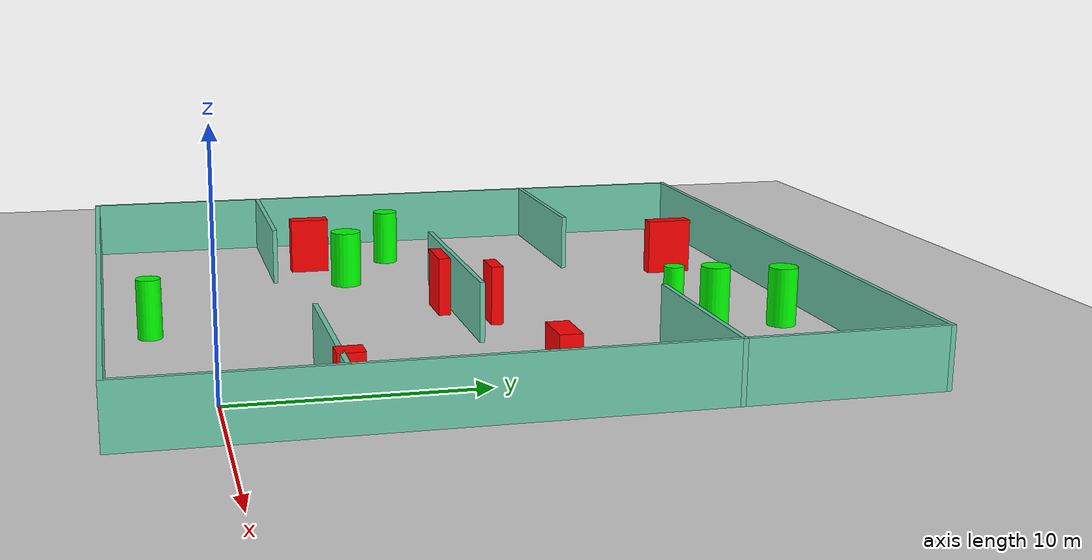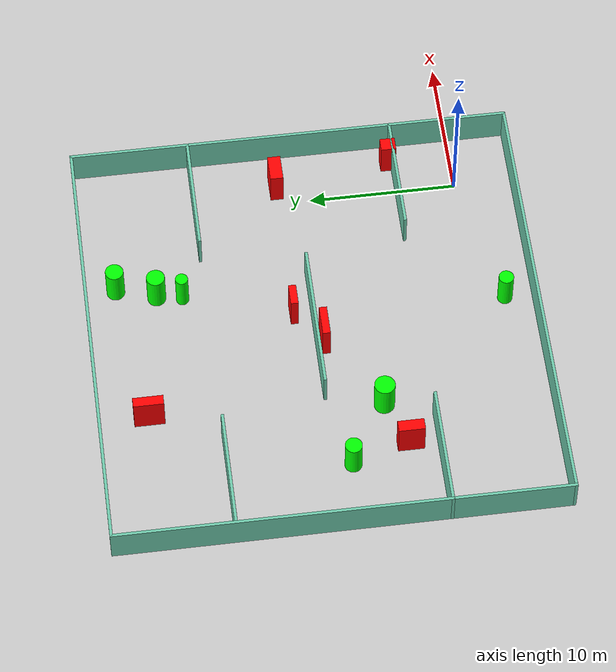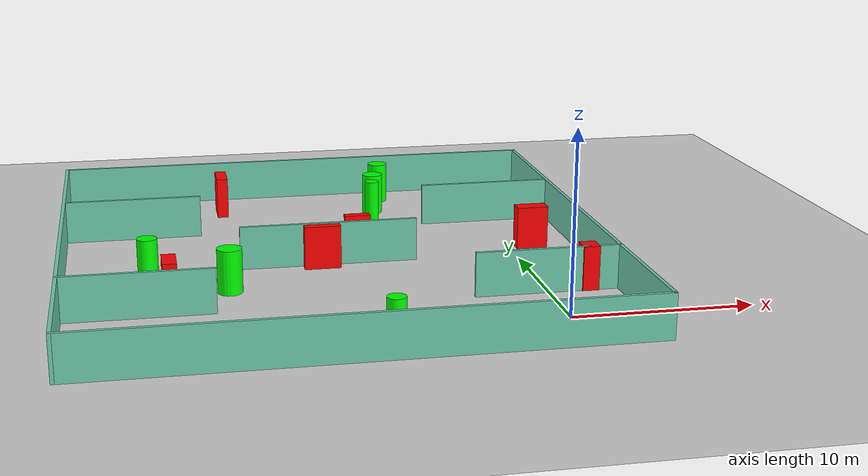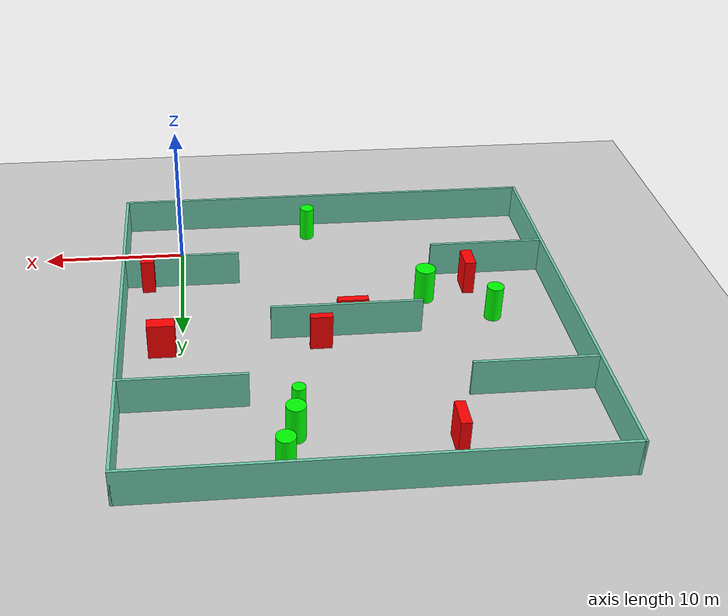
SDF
<sdf version="1.7">
 <world name="default">
  <light name="sun" type="directional">
   <pose>0 0 10 0 -0 0</pose>
   <diffuse>0.8 0.8 0.8 1</diffuse>
   <specular>0.2 0.2 0.2 1</specular>
   <attenuation>
    <range>1000</range>
    <constant>0.9</constant>
    <linear>0.01</linear>
    <quadratic>0.001</quadratic>
   </attenuation>
   <direction>-0.5 0.1 -0.9</direction>
   <spot><inner_angle>0</inner_angle><outer_angle>0</outer_angle><falloff>0</falloff></spot>
  </light>
  <model name="ground_plane">
   <static>1</static>
   <link name="link">
    <collision name="collision">
     <geometry><plane><normal>0 0 1</normal><size>100 100</size></plane></geometry>
     <surface>
      <contact><collide_bitmask>65535</collide_bitmask></contact>
      <friction><ode><mu>100</mu><mu2>50</mu2></ode></friction>
     </surface>
    </collision>
    <visual name="visual">
     <cast_shadows>0</cast_shadows>
     <geometry><plane><normal>0 0 1</normal><size>100 100</size></plane></geometry>
     <material>
      <script><uri>file://media/materials/scripts/gazebo.material</uri><name>Gazebo/Grey</name></script>
     </material>
    </visual>
   </link>
  </model>
  <gravity>0 0 -9.8</gravity>
  <magnetic_field>6e-06 2.3e-05 -4.2e-05</magnetic_field>
  <atmosphere type="adiabatic"/>
  <physics type="ode">
   <max_step_size>0.001</max_step_size>
   <real_time_factor>1</real_time_factor>
   <real_time_update_rate>1000</real_time_update_rate>
  </physics>
  <scene><ambient>0.4 0.4 0.4 1</ambient><background>0.7 0.7 0.7 1</background><shadows>1</shadows></scene>
  <spherical_coordinates>
   <surface_model>EARTH_WGS84</surface_model>
   <latitude_deg>0</latitude_deg>
   <longitude_deg>0</longitude_deg>
   <elevation>0</elevation>
   <heading_deg>0</heading_deg>
  </spherical_coordinates>
  <model name="my_base_walls">
   <link name="Wall_10">
    <collision name="Wall_10_Collision">
     <geometry><box><size>8.2 0.2 2.5</size></box></geometry>
     <pose>0 0 1.25 0 -0 0</pose>
    </collision>
    <visual name="Wall_10_Visual">
     <pose>0 0 1.25 0 -0 0</pose>
     <geometry><box><size>8.2 0.2 2.5</size></box></geometry>
     <material>
      <script><uri>file://media/materials/scripts/gazebo.material</uri><name>Gazebo/Grey</name></script>
      <ambient>0.435294 0.796078 0.67451 1</ambient>
     </material>
     <meta><layer>0</layer></meta>
    </visual>
    <pose>-11 -7 0 0 -0 0</pose>
   </link>
   <link name="Wall_12">
    <collision name="Wall_12_Collision">
     <geometry><box><size>8.2 0.2 2.5</size></box></geometry>
     <pose>0 0 1.25 0 -0 0</pose>
    </collision>
    <visual name="Wall_12_Visual">
     <pose>0 0 1.25 0 -0 0</pose>
     <geometry><box><size>8.2 0.2 2.5</size></box></geometry>
     <material>
      <script><uri>file://media/materials/scripts/gazebo.material</uri><name>Gazebo/Grey</name></script>
      <ambient>0.435294 0.796078 0.67451 1</ambient>
     </material>
     <meta><layer>0</layer></meta>
    </visual>
    <pose>-11 7 0 0 -0 0</pose>
   </link>
   <link name="Wall_14">
    <collision name="Wall_14_Collision">
     <geometry><box><size>8.2 0.2 2.5</size></box></geometry>
     <pose>0 0 1.25 0 -0 0</pose>
    </collision>
    <visual name="Wall_14_Visual">
     <pose>0 0 1.25 0 -0 0</pose>
     <geometry><box><size>8.2 0.2 2.5</size></box></geometry>
     <material>
      <script><uri>file://media/materials/scripts/gazebo.material</uri><name>Gazebo/Grey</name></script>
      <ambient>0.435294 0.796078 0.67451 1</ambient>
     </material>
     <meta><layer>0</layer></meta>
    </visual>
    <pose>11 7 0 0 -0 3.14159</pose>
   </link>
   <link name="Wall_16">
    <collision name="Wall_16_Collision">
     <geometry><box><size>10.2 0.2 2.5</size></box></geometry>
     <pose>0 0 1.25 0 -0 0</pose>
    </collision>
    <visual name="Wall_16_Visual">
     <pose>0 0 1.25 0 -0 0</pose>
     <geometry><box><size>10.2 0.2 2.5</size></box></geometry>
     <material>
      <script><uri>file://media/materials/scripts/gazebo.material</uri><name>Gazebo/Grey</name></script>
      <ambient>0.435294 0.796078 0.67451 1</ambient>
     </material>
     <meta><layer>0</layer></meta>
    </visual>
    <pose>0 0 0 0 -0 3.14159</pose>
   </link>
   <link name="Wall_2">
    <collision name="Wall_2_Collision">
     <geometry><box><size>30.2 0.2 2.5</size></box></geometry>
     <pose>0 0 1.25 0 -0 0</pose>
    </collision>
    <visual name="Wall_2_Visual">
     <pose>0 0 1.25 0 -0 0</pose>
     <geometry><box><size>30.2 0.2 2.5</size></box></geometry>
     <material>
      <script><uri>file://media/materials/scripts/gazebo.material</uri><name>Gazebo/Grey</name></script>
      <ambient>0.435294 0.796078 0.67451 1</ambient>
     </material>
     <meta><layer>0</layer></meta>
    </visual>
    <pose>0 -15 0 0 -0 3.14159</pose>
   </link>
   <link name="Wall_3">
    <collision name="Wall_3_Collision">
     <geometry><box><size>30.2 0.2 2.5</size></box></geometry>
     <pose>0 0 1.25 0 -0 0</pose>
    </collision>
    <visual name="Wall_3_Visual">
     <pose>0 0 1.25 0 -0 0</pose>
     <geometry><box><size>30.2 0.2 2.5</size></box></geometry>
     <material>
      <script><uri>file://media/materials/scripts/gazebo.material</uri><name>Gazebo/Grey</name></script>
      <ambient>0.435294 0.796078 0.67451 1</ambient>
     </material>
     <meta><layer>0</layer></meta>
    </visual>
    <pose>-15 0 0 0 -0 1.5708</pose>
   </link>
   <link name="Wall_4">
    <collision name="Wall_4_Collision">
     <geometry><box><size>30.2 0.2 2.5</size></box></geometry>
     <pose>0 0 1.25 0 -0 0</pose>
    </collision>
    <visual name="Wall_4_Visual">
     <pose>0 0 1.25 0 -0 0</pose>
     <geometry><box><size>30.2 0.2 2.5</size></box></geometry>
     <material>
      <script><uri>file://media/materials/scripts/gazebo.material</uri><name>Gazebo/Grey</name></script>
      <ambient>0.435294 0.796078 0.67451 1</ambient>
     </material>
     <meta><layer>0</layer></meta>
    </visual>
    <pose>0 15 0 0 -0 0</pose>
   </link>
   <link name="Wall_6">
    <collision name="Wall_6_Collision">
     <geometry><box><size>30.2 0.2 2.5</size></box></geometry>
     <pose>0 0 1.25 0 -0 0</pose>
    </collision>
    <visual name="Wall_6_Visual">
     <pose>0 0 1.25 0 -0 0</pose>
     <geometry><box><size>30.2 0.2 2.5</size></box></geometry>
     <material>
      <script><uri>file://media/materials/scripts/gazebo.material</uri><name>Gazebo/Grey</name></script>
      <ambient>0.435294 0.796078 0.67451 1</ambient>
     </material>
     <meta><layer>0</layer></meta>
    </visual>
    <pose>15 0 0 0 -0 1.5708</pose>
   </link>
   <link name="Wall_8">
    <collision name="Wall_8_Collision">
     <geometry><box><size>8.2 0.2 2.5</size></box></geometry>
     <pose>0 0 1.25 0 -0 0</pose>
    </collision>
    <visual name="Wall_8_Visual">
     <pose>0 0 1.25 0 -0 0</pose>
     <geometry><box><size>8.2 0.2 2.5</size></box></geometry>
     <material>
      <script><uri>file://media/materials/scripts/gazebo.material</uri><name>Gazebo/Grey</name></script>
      <ambient>0.435294 0.796078 0.67451 1</ambient>
     </material>
     <meta><layer>0</layer></meta>
    </visual>
    <pose>11 -7 0 0 -0 3.14159</pose>
   </link>
   <static>1</static>
   <pose>-11 11 0 0 -0 0</pose>
  </model>
  <model name="cylinder1">
   <static>1</static>
   <link name="link">
    <inertial>
     <mass>1</mass>
     <inertia><ixx>0.5</ixx><ixy>0</ixy><ixz>0</ixz><iyy>0.5</iyy><iyz>0</iyz><izz>1</izz></inertia>
    </inertial>
    <collision name="collision">
     <geometry><cylinder><radius>0.5701700823497773</radius><length>2.5</length></cylinder></geometry>
    </collision>
    <visual name="visual">
     <geometry><cylinder><radius>0.5701700823497773</radius><length>2.5</length></cylinder></geometry>
     <material>
      <ambient>0 1 0 1</ambient>
      <diffuse>0 1 0 1</diffuse>
      <specular>0.1 0.1 0.1 1</specular>
      <emissive>0 0 0 0</emissive>
     </material>
    </visual>
   </link>
   <pose>-21.288582222167424 9.804147166637712 1.25 0 0 0</pose>
  </model>
  <model name="cylinder2">
   <static>1</static>
   <link name="link">
    <inertial>
     <mass>1</mass>
     <inertia><ixx>0.5</ixx><ixy>0</ixy><ixz>0</ixz><iyy>0.5</iyy><iyz>0</iyz><izz>1</izz></inertia>
    </inertial>
    <collision name="collision">
     <geometry><cylinder><radius>0.5056631502175323</radius><length>2.5</length></cylinder></geometry>
    </collision>
    <visual name="visual">
     <geometry><cylinder><radius>0.5056631502175323</radius><length>2.5</length></cylinder></geometry>
     <material>
      <ambient>0 1 0 1</ambient>
      <diffuse>0 1 0 1</diffuse>
      <specular>0.1 0.1 0.1 1</specular>
      <emissive>0 0 0 0</emissive>
     </material>
    </visual>
   </link>
   <pose>-9.56096814879098 -2.051953850729583 1.25 0 0 0</pose>
  </model>
  <model name="cylinder3">
   <static>1</static>
   <link name="link">
    <inertial>
     <mass>1</mass>
     <inertia><ixx>0.5</ixx><ixy>0</ixy><ixz>0</ixz><iyy>0.5</iyy><iyz>0</iyz><izz>1</izz></inertia>
    </inertial>
    <collision name="collision">
     <geometry><cylinder><radius>0.6116832295924886</radius><length>2.5</length></cylinder></geometry>
    </collision>
    <visual name="visual">
     <geometry><cylinder><radius>0.6116832295924886</radius><length>2.5</length></cylinder></geometry>
     <material>
      <ambient>0 1 0 1</ambient>
      <diffuse>0 1 0 1</diffuse>
      <specular>0.1 0.1 0.1 1</specular>
      <emissive>0 0 0 0</emissive>
     </material>
    </visual>
   </link>
   <pose>-5.875752595001311 23.947099214196296 1.25 0 0 0</pose>
  </model>
  <model name="cylinder4">
   <static>1</static>
   <link name="link">
    <inertial>
     <mass>1</mass>
     <inertia><ixx>0.5</ixx><ixy>0</ixy><ixz>0</ixz><iyy>0.5</iyy><iyz>0</iyz><izz>1</izz></inertia>
    </inertial>
    <collision name="collision">
     <geometry><cylinder><radius>0.622634262693543</radius><length>2.5</length></cylinder></geometry>
    </collision>
    <visual name="visual">
     <geometry><cylinder><radius>0.622634262693543</radius><length>2.5</length></cylinder></geometry>
     <material>
      <ambient>0 1 0 1</ambient>
      <diffuse>0 1 0 1</diffuse>
      <specular>0.1 0.1 0.1 1</specular>
      <emissive>0 0 0 0</emissive>
     </material>
    </visual>
   </link>
   <pose>-6.68178288631845 21.253330196764296 1.25 0 0 0</pose>
  </model>
  <model name="cylinder5">
   <static>1</static>
   <link name="link">
    <inertial>
     <mass>1</mass>
     <inertia><ixx>0.5</ixx><ixy>0</ixy><ixz>0</ixz><iyy>0.5</iyy><iyz>0</iyz><izz>1</izz></inertia>
    </inertial>
    <collision name="collision">
     <geometry><cylinder><radius>0.42755864567353113</radius><length>2.5</length></cylinder></geometry>
    </collision>
    <visual name="visual">
     <geometry><cylinder><radius>0.42755864567353113</radius><length>2.5</length></cylinder></geometry>
     <material>
      <ambient>0 1 0 1</ambient>
      <diffuse>0 1 0 1</diffuse>
      <specular>0.1 0.1 0.1 1</specular>
      <emissive>0 0 0 0</emissive>
     </material>
    </visual>
   </link>
   <pose>-7.006818100897526 19.531346490470426 1.25 0 0 0</pose>
  </model>
  <model name="cylinder6">
   <static>1</static>
   <link name="link">
    <inertial>
     <mass>1</mass>
     <inertia><ixx>0.5</ixx><ixy>0</ixy><ixz>0</ixz><iyy>0.5</iyy><iyz>0</iyz><izz>1</izz></inertia>
    </inertial>
    <collision name="collision">
     <geometry><cylinder><radius>0.6912636142070149</radius><length>2.5</length></cylinder></geometry>
    </collision>
    <visual name="visual">
     <geometry><cylinder><radius>0.6912636142070149</radius><length>2.5</length></cylinder></geometry>
     <material>
      <ambient>0 1 0 1</ambient>
      <diffuse>0 1 0 1</diffuse>
      <specular>0.1 0.1 0.1 1</specular>
      <emissive>0 0 0 0</emissive>
     </material>
    </visual>
   </link>
   <pose>-16.96964833224722 7.174803234600695 1.25 0 0 0</pose>
  </model>
  <model name="box1">
   <static>1</static>
   <link name="link">
    <inertial>
     <mass>1</mass>
     <inertia><ixx>0.083</ixx><ixy>0</ixy><ixz>0</ixz><iyy>0.083</iyy><iyz>0</iyz><izz>0.083</izz></inertia>
    </inertial>
    <collision name="collision">
     <geometry><box><size>2.077479295932066 0.5179405695042226 2.5</size></box></geometry>
    </collision>
    <visual name="visual">
     <geometry><box><size>2.077479295932066 0.5179405695042226 2.5</size></box></geometry>
     <material>
      <ambient>1 0 0 1</ambient>
      <diffuse>1 0 0 1</diffuse>
      <specular>0.1 0.1 0.1 1</specular>
      <emissive>0 0 0 0</emissive>
     </material>
    </visual>
    <sensor name="my_contact" type="contact">
     <contact><collision>box_collision</collision><topic>__default_topic__</topic></contact>
    </sensor>
   </link>
   <pose>-11.454606090892991 10.440460864901652 1.25 0 0 0</pose>
  </model>
  <model name="box2">
   <static>1</static>
   <link name="link">
    <inertial>
     <mass>1</mass>
     <inertia><ixx>0.083</ixx><ixy>0</ixy><ixz>0</ixz><iyy>0.083</iyy><iyz>0</iyz><izz>0.083</izz></inertia>
    </inertial>
    <collision name="collision">
     <geometry><box><size>0.7726694637750875 1.7526856423086887 2.5</size></box></geometry>
    </collision>
    <visual name="visual">
     <geometry><box><size>0.7726694637750875 1.7526856423086887 2.5</size></box></geometry>
     <material>
      <ambient>1 0 0 1</ambient>
      <diffuse>1 0 0 1</diffuse>
      <specular>0.1 0.1 0.1 1</specular>
      <emissive>0 0 0 0</emissive>
     </material>
    </visual>
    <sensor name="my_contact" type="contact">
     <contact><collision>box_collision</collision><topic>__default_topic__</topic></contact>
    </sensor>
   </link>
   <pose>-20.24077094399233 5.878694856159488 1.25 0 0 0</pose>
  </model>
  <model name="box3">
   <static>1</static>
   <link name="link">
    <inertial>
     <mass>1</mass>
     <inertia><ixx>0.083</ixx><ixy>0</ixy><ixz>0</ixz><iyy>0.083</iyy><iyz>0</iyz><izz>0.083</izz></inertia>
    </inertial>
    <collision name="collision">
     <geometry><box><size>1.8348905544827323 0.8820223199070996 2.5</size></box></geometry>
    </collision>
    <visual name="visual">
     <geometry><box><size>1.8348905544827323 0.8820223199070996 2.5</size></box></geometry>
     <material>
      <ambient>1 0 0 1</ambient>
      <diffuse>1 0 0 1</diffuse>
      <specular>0.1 0.1 0.1 1</specular>
      <emissive>0 0 0 0</emissive>
     </material>
    </visual>
    <sensor name="my_contact" type="contact">
     <contact><collision>box_collision</collision><topic>__default_topic__</topic></contact>
    </sensor>
   </link>
   <pose>1.3305998988974679 12.2229181707401 1.25 0 0 0</pose>
  </model>
  <model name="box4">
   <static>1</static>
   <link name="link">
    <inertial>
     <mass>1</mass>
     <inertia><ixx>0.083</ixx><ixy>0</ixy><ixz>0</ixz><iyy>0.083</iyy><iyz>0</iyz><izz>0.083</izz></inertia>
    </inertial>
    <collision name="collision">
     <geometry><box><size>0.66973194180436 2.0282819598018635 2.5</size></box></geometry>
    </collision>
    <visual name="visual">
     <geometry><box><size>0.66973194180436 2.0282819598018635 2.5</size></box></geometry>
     <material>
      <ambient>1 0 0 1</ambient>
      <diffuse>1 0 0 1</diffuse>
      <specular>0.1 0.1 0.1 1</specular>
      <emissive>0 0 0 0</emissive>
     </material>
    </visual>
    <sensor name="my_contact" type="contact">
     <contact><collision>box_collision</collision><topic>__default_topic__</topic></contact>
    </sensor>
   </link>
   <pose>-16.278077461393824 22.68456891149676 1.25 0 0 0</pose>
  </model>
  <model name="box5">
   <static>1</static>
   <link name="link">
    <inertial>
     <mass>1</mass>
     <inertia><ixx>0.083</ixx><ixy>0</ixy><ixz>0</ixz><iyy>0.083</iyy><iyz>0</iyz><izz>0.083</izz></inertia>
    </inertial>
    <collision name="collision">
     <geometry><box><size>0.919064619205658 1.0247643717383383 2.5</size></box></geometry>
    </collision>
    <visual name="visual">
     <geometry><box><size>0.919064619205658 1.0247643717383383 2.5</size></box></geometry>
     <material>
      <ambient>1 0 0 1</ambient>
      <diffuse>1 0 0 1</diffuse>
      <specular>0.1 0.1 0.1 1</specular>
      <emissive>0 0 0 0</emissive>
     </material>
    </visual>
    <sensor name="my_contact" type="contact">
     <contact><collision>box_collision</collision><topic>__default_topic__</topic></contact>
    </sensor>
   </link>
   <pose>2.3444701169070434 4.3094497723546485 1.25 0 0 0</pose>
  </model>
  <model name="box6">
   <static>1</static>
   <link name="link">
    <inertial>
     <mass>1</mass>
     <inertia><ixx>0.083</ixx><ixy>0</ixy><ixz>0</ixz><iyy>0.083</iyy><iyz>0</iyz><izz>0.083</izz></inertia>
    </inertial>
    <collision name="collision">
     <geometry><box><size>1.4700854394935274 0.5132831683882767 2.5</size></box></geometry>
    </collision>
    <visual name="visual">
     <geometry><box><size>1.4700854394935274 0.5132831683882767 2.5</size></box></geometry>
     <material>
      <ambient>1 0 0 1</ambient>
      <diffuse>1 0 0 1</diffuse>
      <specular>0.1 0.1 0.1 1</specular>
      <emissive>0 0 0 0</emissive>
     </material>
    </visual>
    <sensor name="my_contact" type="contact">
     <contact><collision>box_collision</collision><topic>__default_topic__</topic></contact>
    </sensor>
   </link>
   <pose>-9.151279808481707 12.259519368327792 1.25 0 0 0</pose>
  </model>
 </world>
</sdf>
